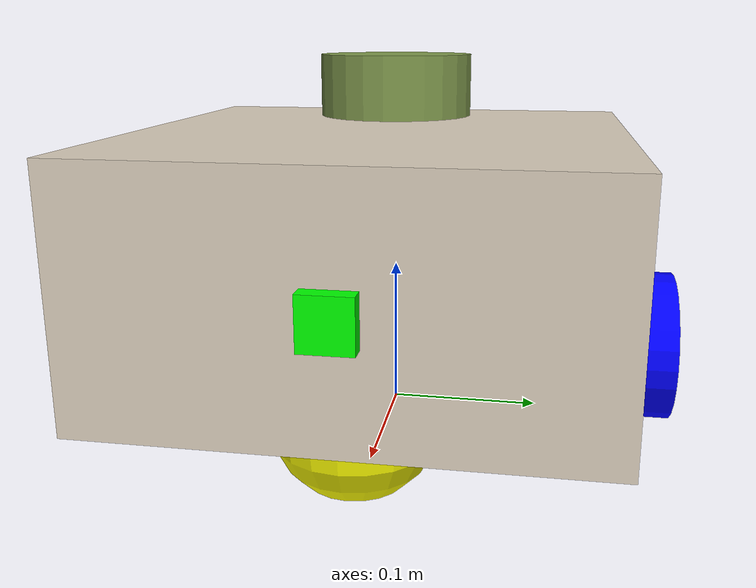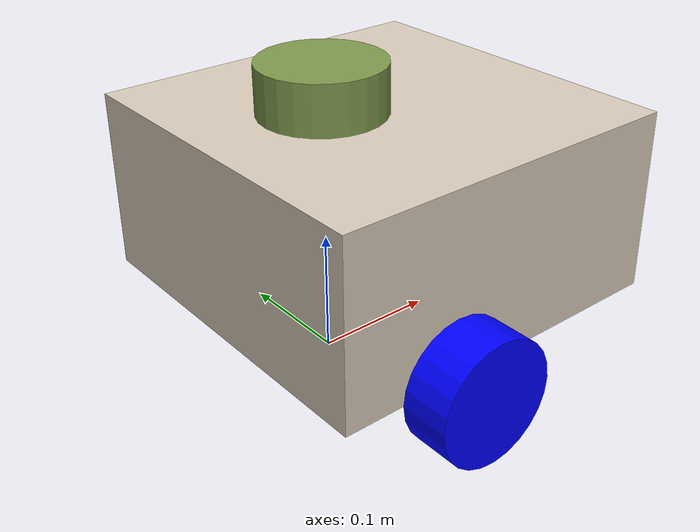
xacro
<?xml version="1.1" encoding="UTF-8"?>
<robot xmlns:xacro="http://www.ros.org/wiki/xacro">

  <xacro:include filename="materials.xacro" />
  <xacro:include filename="inertial_macro.xacro" />

  <xacro:include filename="wheel.xacro" />

  <xacro:include filename="../sensors/lidar_sensor.xacro" />
  <xacro:include filename="../sensors/rgbd_camera_sensor.xacro" />

  <link name="base_footprint" />

  <link name="base_link" />

  <joint name="base_joint" type="fixed">
    <parent link="base_footprint" />
    <child link="base_link" />
    <origin xyz="0 0 0.05" />
  </joint>

  <link name="chassis_link">
    <visual>
      <origin xyz="0.15 0 0.075" />
      <geometry>
        <box size="0.3 0.3 0.15" />
      </geometry>
      <material name="paper" />
    </visual>
    <collision>
      <origin xyz="0.15 0 0.075" />
      <geometry>
        <box size="0.3 0.3 0.15" />
      </geometry>
    </collision>
    <xacro:inertial_box mass="0.5" x="0.3" y="0.3" z="0.15">
      <origin xyz="0.15 0 0.075" rpy="0 0 0" />
    </xacro:inertial_box>
  </link>

  <joint name="chassis_joint" type="fixed">
    <parent link="base_link" />
    <child link="chassis_link" />
    <origin xyz="-0.1 0 0" />
  </joint>

  <xacro:wheel
    prefix="left"
    radius="0.05"
    length="0.04"
    parent="base_link">
    <origin xyz="0 0.17 0" rpy="-${pi/2} 0 0" />
    <axis xyz="0 0 1" />
  </xacro:wheel>

  <xacro:wheel
      prefix="right"
      radius="0.05"
      length="0.04"
      parent="base_link">
    <origin xyz="0 -0.17 0" rpy="${pi/2} 0 0" />
    <axis xyz="0 0 -1" />
  </xacro:wheel>

  <link name="caster_wheel_link">
    <visual>
      <geometry>
        <sphere radius="0.05" />
      </geometry>
      <material name="yellow" />
    </visual>
    <collision>
      <geometry>
        <sphere radius="0.05" />
      </geometry>
    </collision>
    <xacro:inertial_sphere mass="0.1" radius="0.05">
      <origin xyz="0 0 0" rpy="0 0 0" />
    </xacro:inertial_sphere>
  </link>

  <joint name="caster_wheel_joint" type="fixed">
    <parent link="base_link" />
    <child link="caster_wheel_link" />
    <origin xyz="0.14 0 0" />
  </joint>

  <xacro:lidar prefix="main" parent="chassis_link">
    <origin xyz="0.1 0 0.175" rpy="0 0 0" />
  </xacro:lidar>

  <xacro:rgbd_camera prefix="main" parent="base_link">
    <origin xyz="0.205 0 0.075" rpy="0 0 0" />
  </xacro:rgbd_camera>

  <gazebo reference="caster_wheel_link">
    <mu1 value="0.001" />
    <mu2 value="0.001" />
  </gazebo>

</robot>

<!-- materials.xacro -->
<robot xmlns:xacro="http://www.ros.org/wiki/xacro">

  <!-- Solid -->
  <material name="white">
    <color rgba="1.0 1.0 1.0 1.0"/>
  </material>

  <material name="Gray">
    <color rgba="0.6 0.6 0.6 1.0"/>
  </material>

  <material name="black">
    <color rgba="0.0 0.0 0.0 1.0"/>
  </material>

  <material name="red">
    <color rgba="1.0 0.0 0.0 1.0"/>
  </material>

  <material name="yellow">
    <color rgba="1.0 1.0 0.0 1.0"/>
  </material>

  <material name="green">
    <color rgba="0.0 1.0 0.0 1.0"/>
  </material>

  <material name="blue">
    <color rgba="0.0 0.0 1.0 1.0"/>
  </material>

  <!-- Exotic -->
  <material name="paper">
    <color rgba="0.85 0.80 0.73 1.0"/>
  </material>

  <material name="Salmon">
    <color rgba="0.9 0.5 0.5 1.0"/>
  </material>

  <material name="Dark purple">
    <color rgba="0.3 0.1 0.4 1.0"/>
  </material>

  <material name="Olive">
    <color rgba="0.5 0.6 0.3 1.0"/>
  </material>

</robot>

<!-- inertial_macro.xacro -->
<robot xmlns:xacro="http://www.ros.org/wiki/xacro">

  <!-- Specify some standard inertial calculations
  https://en.wikipedia.org/wiki/List_of_moments_of_inertia -->
  <!-- These make use of xacro's mathematical functionality -->

  <xacro:macro name="inertial_sphere" params="mass radius *origin">
    <inertial>
      <xacro:insert_block name="origin" />
      <mass value="${mass}" />
      <inertia ixx="${(2/5) * mass * (radius*radius)}" ixy="0.0" ixz="0.0"
        iyy="${(2/5) * mass * (radius*radius)}" iyz="0.0"
        izz="${(2/5) * mass * (radius*radius)}" />
    </inertial>
  </xacro:macro>

  <xacro:macro name="inertial_box" params="mass x y z *origin">
    <inertial>
      <xacro:insert_block name="origin" />
      <mass value="${mass}" />
      <inertia ixx="${(1/12) * mass * (y*y+z*z)}" ixy="0.0" ixz="0.0"
        iyy="${(1/12) * mass * (x*x+z*z)}" iyz="0.0"
        izz="${(1/12) * mass * (x*x+y*y)}" />
    </inertial>
  </xacro:macro>

  <xacro:macro name="inertial_cylinder" params="mass length radius *origin">
    <inertial>
      <xacro:insert_block name="origin" />
      <mass value="${mass}" />
      <inertia ixx="${(1/12) * mass * (3*radius*radius + length*length)}" ixy="0.0" ixz="0.0"
        iyy="${(1/12) * mass * (3*radius*radius + length*length)}" iyz="0.0"
        izz="${(1/2) * mass * (radius*radius)}" />
    </inertial>
  </xacro:macro>

</robot>

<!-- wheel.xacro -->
<robot xmlns:xacro="http://www.ros.org/wiki/xacro">

  <xacro:macro name="wheel" params="prefix radius length parent *origin *axis">
    <link name="${prefix}_wheel_link">
      <visual>
        <geometry>
          <cylinder radius="${radius}" length="${length}" />
        </geometry>
        <material name="blue" />
      </visual>
      <collision>
        <geometry>
          <cylinder radius="${radius}" length="${length}" />
        </geometry>
      </collision>
      <xacro:inertial_cylinder mass="0.1" radius="${radius}" length="${length}">
        <origin xyz="0 0 0" rpy="0 0 0" />
      </xacro:inertial_cylinder>
    </link>

    <joint name="${prefix}_wheel_joint" type="continuous">
      <parent link="${parent}" />
      <child link="${prefix}_wheel_link" />
      <xacro:insert_block name="origin" />
      <xacro:insert_block name="axis" />
    </joint>

  </xacro:macro>

</robot>

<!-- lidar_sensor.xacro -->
<robot xmlns:xacro="http://www.ros.org/wiki/xacro">

  <xacro:macro name="lidar" params="prefix parent *origin">
    <link name="${prefix}_lidar_link">
      <visual>
        <geometry>
          <cylinder radius="0.05" length="0.04" />
        </geometry>
        <material name="Olive" />
      </visual>
      <collision>
        <geometry>
          <cylinder radius="0.05" length="0.04" />
        </geometry>
      </collision>
      <xacro:inertial_cylinder mass="0.1" length="0.04" radius="0.05">
        <origin xyz="0 0 0" rpy="0 0 0" />
      </xacro:inertial_cylinder>
    </link>

    <joint name="${prefix}_lidar_joint" type="fixed">
      <parent link="${parent}" />
      <child link="${prefix}_lidar_link" />
      <xacro:insert_block name="origin" />
    </joint>

    <gazebo reference="${prefix}_lidar_link">
      <sensor name='${prefix}_lidar' type='gpu_lidar'>
        <pose>0 0 0 0 0 0</pose>
        <topic>lidar</topic>
        <ignition_frame_id>${prefix}_lidar_link</ignition_frame_id>
        <update_rate>10</update_rate>
        <lidar>
          <scan>
            <horizontal>
              <samples>640</samples>
              <resolution>1</resolution>
              <min_angle>-3.14</min_angle>
              <max_angle>3.14</max_angle>
            </horizontal>
            <vertical>
              <samples>1</samples>
              <resolution>1</resolution>
              <min_angle>0.0</min_angle>
              <max_angle>0.0</max_angle>
            </vertical>
          </scan>
          <range>
            <min>0.08</min>
            <max>10.0</max>
            <resolution>0.01</resolution>
          </range>
        </lidar>
        <always_on>true</always_on>
        <visualize>true</visualize>
      </sensor>
    </gazebo>
  </xacro:macro>

</robot>

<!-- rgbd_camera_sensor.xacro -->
<robot xmlns:xacro="http://www.ros.org/wiki/xacro">

  <xacro:macro name="rgbd_camera" params="prefix parent *origin">
    <link name="${prefix}_rgbd_camera_link">
      <visual>
        <geometry>
          <box size="0.01 0.03 0.03" />
        </geometry>
        <material name="green" />
      </visual>
      <collision>
        <geometry>
          <box size="0.01 0.03 0.03" />
        </geometry>
      </collision>
      <xacro:inertial_box mass="0.5" x="0.01" y="0.03" z="0.03">
        <origin xyz="0 0 0" rpy="0 0 0" />
      </xacro:inertial_box>
    </link>

    <joint name="${prefix}_rgbd_camera_joint" type="fixed">
      <parent link="${parent}" />
      <child link="${prefix}_rgbd_camera_link" />
      <xacro:insert_block name="origin" />
    </joint>

    <gazebo reference="${prefix}_rgbd_camera_link">
      <sensor name="${prefix}_rgbd_camera" type="rgbd_camera">
        <update_rate>30</update_rate>
        <topic>camera</topic>
        <ignition_frame_id>${prefix}_rgbd_camera_link</ignition_frame_id>

        <camera>
          <horizontal_fov>1.05</horizontal_fov>
          <image>
            <width>640</width>
            <height>480</height>
            <format>R8G8B8</format>
          </image>
          <clip>
            <near>0.1</near>
            <far>20.0</far>
          </clip>
        </camera>
      </sensor>
    </gazebo>
  </xacro:macro>

</robot>
